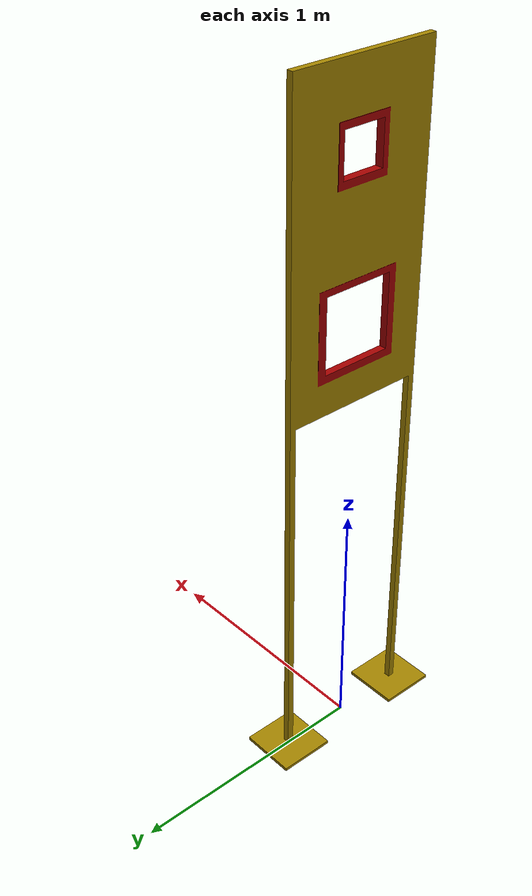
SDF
<?xml version="1.0"?>
<sdf version="1.5">
  <model name="torpedo_board">
    <static>true</static>
    <link name="board">
      <collision name='boardcol'>
        <pose>0 0 0 1.57 0 1.57</pose>
        <geometry>
          <mesh>
            <uri>file://torpedo_board/torpedo_board.dae</uri>
          </mesh>
        </geometry>
      </collision>
      <visual name="boardvis">
        <pose>0 0 0 1.57 0 1.57</pose>
        <geometry>
          <mesh>
            <uri>file://torpedo_board/torpedo_board.dae</uri>
          </mesh>
        </geometry>
      </visual>
    </link>
    <link name="hole_1">
      <collision name='hole_1_col'>
        <pose>0 0 0 1.57 0 1.57</pose>
        <geometry>
          <mesh>
            <uri>file://torpedo_board/hole.dae</uri>
          </mesh>
        </geometry>
      </collision>
    </link>
  </model>
</sdf>
